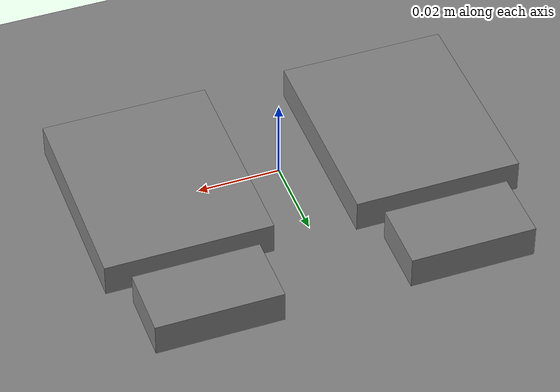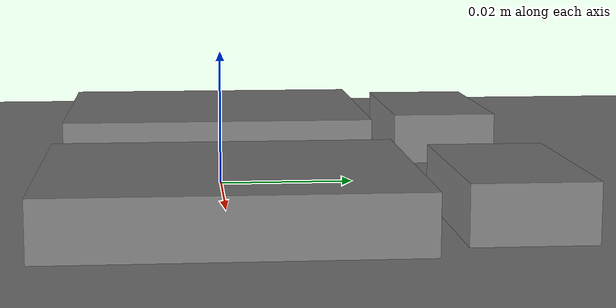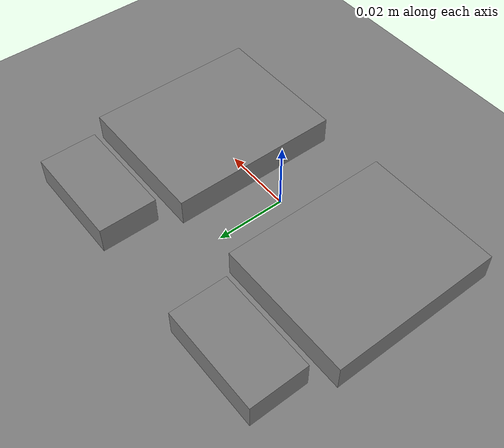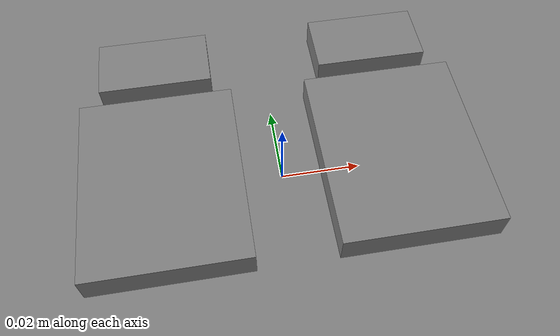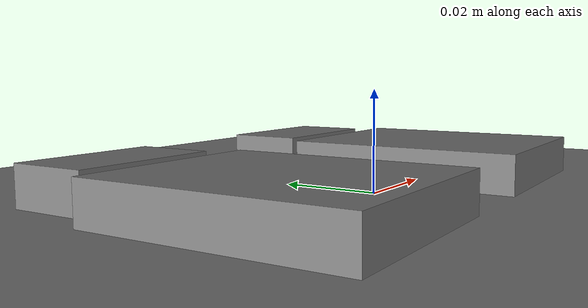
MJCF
<mujoco model="cadex-assembly">
  <compiler angle="radian" autolimits="false"/>

  <option integrator="implicitfast">
    <flag island="disable"/>
  </option>

  <size nkey="1"/>

  <worldbody>
    <body name="ground">
      <inertial pos="0 0 -0.02" quat="0.5 0.5 -0.5 0.5" mass="155.52" diaginertia="37.3248 18.6831 18.6831"/>
      <geom name="ground/collision0" size="0.6 0.6 0.05" type="plane" conaffinity="2147483647"/>
    </body>
    <body name="pelvis" pos="0 0 0.304" quat="1 0 0 0">
      <inertial pos="5.10066e-11 -0.0014974 0.00201431" quat="0.585863 0.395936 0.585863 0.395936" mass="0.0344318" diaginertia="2.32693e-05 2.13643e-05 4.10294e-06"/>
      <joint name="pelvis/free" type="free"/>
      <body name="hip_l" pos="-0.03 0 -0.046">
        <inertial pos="0.00306308 0.000167143 0.00483132" quat="0.668848 0.689819 -0.193833 0.198044" mass="0.0109424" diaginertia="2.57133e-06 2.01601e-06 1.52965e-06"/>
        <joint name="hip_roll_l" pos="0 0 0.019" axis="0 1 0" limited="true" range="-0.523599 0.785398" armature="2e-05" damping="0.00572958"/>
        <body name="thigh_l" pos="0 0 -0.069">
          <inertial pos="0.00186334 0 0.00865874" quat="0.706283 -0.0341196 -0.0341196 0.706283" mass="0.0113903" diaginertia="1.42442e-05 1.23475e-05 2.80114e-06"/>
          <joint name="hip_pitch_l" pos="0 0 0.05" axis="1 0 0" limited="true" range="-1.0472 1.5708" armature="2e-05" damping="0.00572958"/>
          <body name="calf_l" pos="0 0 -0.0975">
            <inertial pos="0.00190529 0 0.00873146" quat="0.706082 -0.0380597 -0.0380597 0.706082" mass="0.0106027" diaginertia="1.23437e-05 1.05495e-05 2.56448e-06"/>
            <joint name="knee_l" pos="0 0 0.0475" axis="1 0 0" limited="true" range="-0.0872665 2.26893" armature="1e-05" damping="0.00572958"/>
            <body name="ankle_bracket_l" pos="0 0 -0.0625">
              <inertial pos="-0.000200146 -0.00305517 0.00502274" quat="0.649131 0.281404 0.651139 0.274697" mass="0.00855603" diaginertia="2.00256e-06 1.64844e-06 9.97989e-07"/>
              <joint name="ankle_l" pos="0 0 0.015" axis="1 0 0" limited="true" range="-0.698132 0.698132" armature="5e-06" damping="0.00286479"/>
              <body name="foot_l" pos="0 0.01225 -0.02">
                <inertial pos="1.85444e-05 -0.0109016 -0.00347887" quat="0.502016 0.498229 -0.496394 0.50333" mass="0.0189899" diaginertia="5.46039e-06 4.23487e-06 1.87339e-06"/>
                <joint name="ankle_roll_l" pos="0 -0.01225 0.005" axis="0 1 0" limited="true" range="-0.349066 0.349066" armature="5e-06" damping="0.00286479"/>
                <geom name="foot_l/collision0" size="0.02 0.0245 0.004" pos="0 -0.01225 -0.005" type="box" conaffinity="2147483647" friction="1.2"/>
                <body name="toe_l" pos="0 0.01225 -0.005">
                  <inertial pos="9.15527e-08 0.0100355 -2.16953e-09" quat="1.51361e-05 0.707107 -1.51361e-05 0.707107" mass="0.00631727" diaginertia="7.95477e-07 6.26498e-07 2.3884e-07"/>
                  <geom name="toe_l/collision0" size="0.015 0.00825 0.004" pos="0 0.01275 0" type="box" conaffinity="2147483647" friction="1.2"/>
                </body>
              </body>
              <body name="sv_aroll_l" pos="0 -0.00155 -0.0095">
                <inertial pos="0 0.0012249 -0.000366498" quat="0.896988 0.442054 0 0" mass="0.0133982" diaginertia="1.35095e-06 9.00617e-07 7.75131e-07"/>
              </body>
            </body>
            <body name="sv_ankle_l" pos="0.00155 0 -0.042">
              <inertial pos="-0.0012249 0 -0.000366498" quat="0.634267 0.312579 0.312579 0.634267" mass="0.0133982" diaginertia="1.35095e-06 9.00617e-07 7.75131e-07"/>
            </body>
          </body>
          <body name="sv_knee_l" pos="0.00155 0 -0.0445">
            <inertial pos="-0.0012249 0 -0.000366498" quat="0.634267 0.312579 0.312579 0.634267" mass="0.0133982" diaginertia="1.35095e-06 9.00617e-07 7.75131e-07"/>
          </body>
        </body>
        <body name="sv_pitch_l" pos="0.00155 0 -0.0135">
          <inertial pos="-0.0012249 0 -0.000366498" quat="0.634267 0.312579 0.312579 0.634267" mass="0.0133982" diaginertia="1.35095e-06 9.00617e-07 7.75131e-07"/>
        </body>
      </body>
      <body name="hip_r" pos="0.03 0 -0.046">
        <inertial pos="-0.00306308 0.000167143 0.00483132" quat="0.668848 0.689819 0.193833 -0.198044" mass="0.0109424" diaginertia="2.57133e-06 2.01601e-06 1.52965e-06"/>
        <joint name="hip_roll_r" pos="0 0 0.019" axis="0 1 0" limited="true" range="-0.523599 0.785398" armature="2e-05" damping="0.00572958"/>
        <body name="thigh_r" pos="0 0 -0.069">
          <inertial pos="-0.00186334 0 0.00865874" quat="0.706283 0.0341196 0.0341196 0.706283" mass="0.0113903" diaginertia="1.42442e-05 1.23475e-05 2.80114e-06"/>
          <joint name="hip_pitch_r" pos="0 0 0.05" axis="1 0 0" limited="true" range="-1.0472 1.5708" armature="2e-05" damping="0.00572958"/>
          <body name="calf_r" pos="0 0 -0.0975">
            <inertial pos="-0.00190529 0 0.00873146" quat="0.706082 0.0380597 0.0380597 0.706082" mass="0.0106027" diaginertia="1.23437e-05 1.05495e-05 2.56448e-06"/>
            <joint name="knee_r" pos="0 0 0.0475" axis="1 0 0" limited="true" range="-0.0872665 2.26893" armature="1e-05" damping="0.00572958"/>
            <body name="ankle_bracket_r" pos="0 0 -0.0625">
              <inertial pos="0.000200146 -0.00305517 0.00502274" quat="0.651139 0.274697 0.649131 0.281404" mass="0.00855603" diaginertia="2.00256e-06 1.64844e-06 9.97989e-07"/>
              <joint name="ankle_r" pos="0 0 0.015" axis="1 0 0" limited="true" range="-0.698132 0.698132" armature="5e-06" damping="0.00286479"/>
              <body name="foot_r" pos="0 0.01225 -0.02">
                <inertial pos="1.85444e-05 -0.0109016 -0.00347887" quat="0.502016 0.498229 -0.496394 0.50333" mass="0.0189899" diaginertia="5.46039e-06 4.23487e-06 1.87339e-06"/>
                <joint name="ankle_roll_r" pos="0 -0.01225 0.005" axis="0 1 0" limited="true" range="-0.349066 0.349066" armature="5e-06" damping="0.00286479"/>
                <geom name="foot_r/collision0" size="0.02 0.0245 0.004" pos="0 -0.01225 -0.005" type="box" conaffinity="2147483647" friction="1.2"/>
                <body name="toe_r" pos="0 0.01225 -0.005">
                  <inertial pos="9.15527e-08 0.0100355 -2.16953e-09" quat="1.51361e-05 0.707107 -1.51361e-05 0.707107" mass="0.00631727" diaginertia="7.95477e-07 6.26498e-07 2.3884e-07"/>
                  <geom name="toe_r/collision0" size="0.015 0.00825 0.004" pos="0 0.01275 0" type="box" conaffinity="2147483647" friction="1.2"/>
                </body>
              </body>
              <body name="sv_aroll_r" pos="0 -0.00155 -0.0095">
                <inertial pos="0 0.0012249 -0.000366498" quat="0.896988 0.442054 0 0" mass="0.0133982" diaginertia="1.35095e-06 9.00617e-07 7.75131e-07"/>
              </body>
            </body>
            <body name="sv_ankle_r" pos="-0.00155 0 -0.042">
              <inertial pos="0.0012249 0 -0.000366498" quat="0.312579 0.634267 0.634267 0.312579" mass="0.0133982" diaginertia="1.35095e-06 9.00617e-07 7.75131e-07"/>
            </body>
          </body>
          <body name="sv_knee_r" pos="-0.00155 0 -0.0445">
            <inertial pos="0.0012249 0 -0.000366498" quat="0.312579 0.634267 0.634267 0.312579" mass="0.0133982" diaginertia="1.35095e-06 9.00617e-07 7.75131e-07"/>
          </body>
        </body>
        <body name="sv_pitch_r" pos="-0.00155 0 -0.0135">
          <inertial pos="0.0012249 0 -0.000366498" quat="0.312579 0.634267 0.634267 0.312579" mass="0.0133982" diaginertia="1.35095e-06 9.00617e-07 7.75131e-07"/>
        </body>
      </body>
      <body name="sv_roll_l" pos="-0.03 -0.00155 -0.0215">
        <inertial pos="0 0.0012249 -0.000366498" quat="0.896988 0.442054 0 0" mass="0.0133982" diaginertia="1.35095e-06 9.00617e-07 7.75131e-07"/>
      </body>
      <body name="sv_roll_r" pos="0.03 -0.00155 -0.0215">
        <inertial pos="0 0.0012249 -0.000366498" quat="0.896988 0.442054 0 0" mass="0.0133982" diaginertia="1.35095e-06 9.00617e-07 7.75131e-07"/>
      </body>
    </body>
  </worldbody>

  <contact>
    <exclude name="hip_l|pelvis" body1="pelvis" body2="hip_l"/>
    <exclude name="hip_r|pelvis" body1="pelvis" body2="hip_r"/>
    <exclude name="pelvis|sv_roll_l" body1="pelvis" body2="sv_roll_l"/>
    <exclude name="pelvis|sv_roll_r" body1="pelvis" body2="sv_roll_r"/>
    <exclude name="hip_l|thigh_l" body1="hip_l" body2="thigh_l"/>
    <exclude name="hip_l|sv_pitch_l" body1="hip_l" body2="sv_pitch_l"/>
    <exclude name="calf_l|thigh_l" body1="thigh_l" body2="calf_l"/>
    <exclude name="sv_knee_l|thigh_l" body1="thigh_l" body2="sv_knee_l"/>
    <exclude name="ankle_bracket_l|calf_l" body1="calf_l" body2="ankle_bracket_l"/>
    <exclude name="calf_l|sv_ankle_l" body1="calf_l" body2="sv_ankle_l"/>
    <exclude name="ankle_bracket_l|foot_l" body1="ankle_bracket_l" body2="foot_l"/>
    <exclude name="ankle_bracket_l|sv_aroll_l" body1="ankle_bracket_l" body2="sv_aroll_l"/>
    <exclude name="foot_l|toe_l" body1="foot_l" body2="toe_l"/>
    <exclude name="hip_r|thigh_r" body1="hip_r" body2="thigh_r"/>
    <exclude name="hip_r|sv_pitch_r" body1="hip_r" body2="sv_pitch_r"/>
    <exclude name="calf_r|thigh_r" body1="thigh_r" body2="calf_r"/>
    <exclude name="sv_knee_r|thigh_r" body1="thigh_r" body2="sv_knee_r"/>
    <exclude name="ankle_bracket_r|calf_r" body1="calf_r" body2="ankle_bracket_r"/>
    <exclude name="calf_r|sv_ankle_r" body1="calf_r" body2="sv_ankle_r"/>
    <exclude name="ankle_bracket_r|foot_r" body1="ankle_bracket_r" body2="foot_r"/>
    <exclude name="ankle_bracket_r|sv_aroll_r" body1="ankle_bracket_r" body2="sv_aroll_r"/>
    <exclude name="foot_r|toe_r" body1="foot_r" body2="toe_r"/>
  </contact>

  <actuator>
    <general name="hip_roll_l/motor" joint="hip_roll_l" ctrllimited="false" forcelimited="true" forcerange="-0.086 0.086"/>
    <general name="hip_roll_r/motor" joint="hip_roll_r" ctrllimited="false" forcelimited="true" forcerange="-0.086 0.086"/>
    <general name="hip_pitch_l/motor" joint="hip_pitch_l" ctrllimited="false" forcelimited="true" forcerange="-0.086 0.086"/>
    <general name="hip_pitch_r/motor" joint="hip_pitch_r" ctrllimited="false" forcelimited="true" forcerange="-0.086 0.086"/>
    <general name="knee_l/motor" joint="knee_l" ctrllimited="false" forcelimited="true" forcerange="-0.086 0.086"/>
    <general name="knee_r/motor" joint="knee_r" ctrllimited="false" forcelimited="true" forcerange="-0.086 0.086"/>
    <general name="ankle_l/motor" joint="ankle_l" ctrllimited="false" forcelimited="true" forcerange="-0.086 0.086"/>
    <general name="ankle_r/motor" joint="ankle_r" ctrllimited="false" forcelimited="true" forcerange="-0.086 0.086"/>
    <general name="ankle_roll_l/motor" joint="ankle_roll_l" ctrllimited="false" forcelimited="true" forcerange="-0.086 0.086"/>
    <general name="ankle_roll_r/motor" joint="ankle_roll_r" ctrllimited="false" forcelimited="true" forcerange="-0.086 0.086"/>
  </actuator>

  <sensor>
    <framepos objtype="xbody" objname="pelvis" name="obs/0"/>
    <framequat objtype="xbody" objname="pelvis" name="obs/1"/>
    <framelinvel objtype="xbody" objname="pelvis" name="obs/2"/>
    <frameangvel objtype="xbody" objname="pelvis" name="obs/3"/>
    <subtreecom body="pelvis" name="obs/4"/>
    <subtreelinvel body="pelvis" name="obs/5"/>
    <framepos objtype="xbody" objname="foot_l" name="obs/6"/>
    <framepos objtype="xbody" objname="foot_r" name="obs/7"/>
    <jointpos joint="hip_roll_l" name="obs/8"/>
    <jointpos joint="hip_roll_r" name="obs/9"/>
    <jointpos joint="hip_pitch_l" name="obs/10"/>
    <jointpos joint="hip_pitch_r" name="obs/11"/>
    <jointpos joint="knee_l" name="obs/12"/>
    <jointpos joint="knee_r" name="obs/13"/>
    <jointpos joint="ankle_l" name="obs/14"/>
    <jointpos joint="ankle_r" name="obs/15"/>
    <jointpos joint="ankle_roll_l" name="obs/16"/>
    <jointpos joint="ankle_roll_r" name="obs/17"/>
    <jointvel joint="hip_roll_l" name="obs/18"/>
    <jointvel joint="hip_roll_r" name="obs/19"/>
    <jointvel joint="hip_pitch_l" name="obs/20"/>
    <jointvel joint="hip_pitch_r" name="obs/21"/>
    <jointvel joint="knee_l" name="obs/22"/>
    <jointvel joint="knee_r" name="obs/23"/>
    <jointvel joint="ankle_l" name="obs/24"/>
    <jointvel joint="ankle_r" name="obs/25"/>
    <jointvel joint="ankle_roll_l" name="obs/26"/>
    <jointvel joint="ankle_roll_r" name="obs/27"/>

    <actuatorfrc actuator="hip_roll_l/motor" name="obs/28"/>

    <actuatorfrc actuator="hip_roll_r/motor" name="obs/29"/>

    <actuatorfrc actuator="hip_pitch_l/motor" name="obs/30"/>

    <actuatorfrc actuator="hip_pitch_r/motor" name="obs/31"/>

    <actuatorfrc actuator="knee_l/motor" name="obs/32"/>

    <actuatorfrc actuator="knee_r/motor" name="obs/33"/>

    <actuatorfrc actuator="ankle_l/motor" name="obs/34"/>

    <actuatorfrc actuator="ankle_r/motor" name="obs/35"/>

    <actuatorfrc actuator="ankle_roll_l/motor" name="obs/36"/>

    <actuatorfrc actuator="ankle_roll_r/motor" name="obs/37"/>
  </sensor>

  <keyframe>
    <key name="solved" qpos="0 0 0.304 1 0 0 0 0 0 0 0 0 0 0 0 0 0"/>
  </keyframe>
</mujoco>
